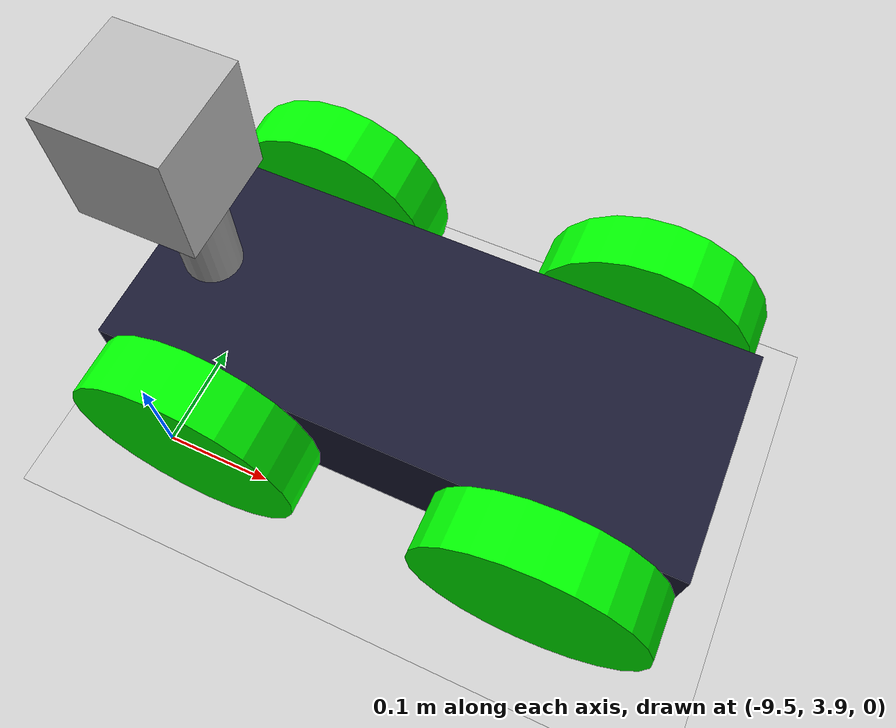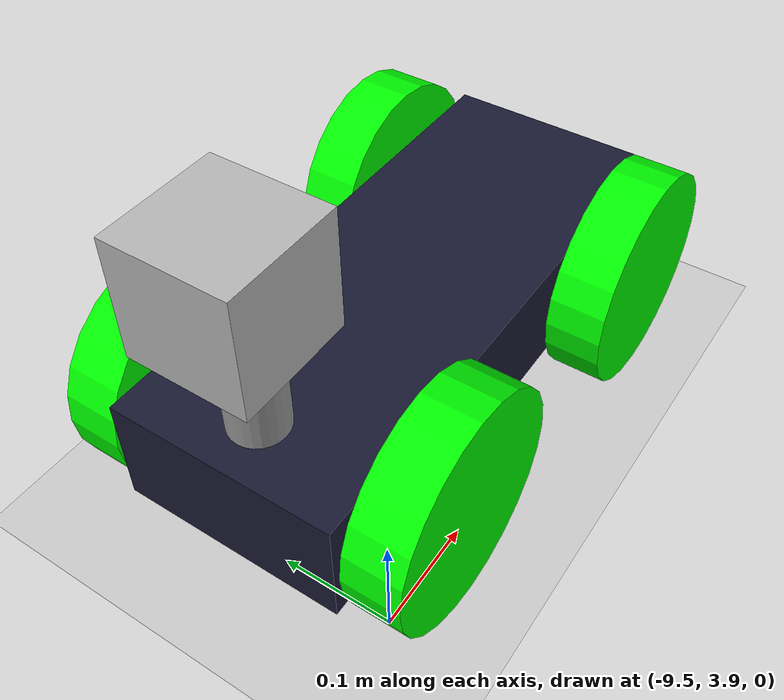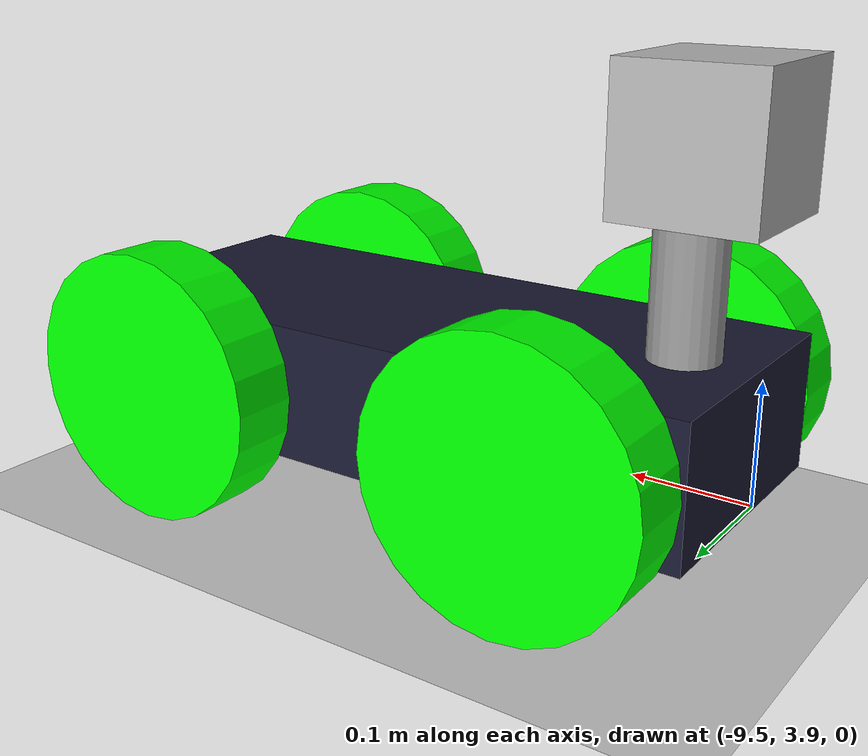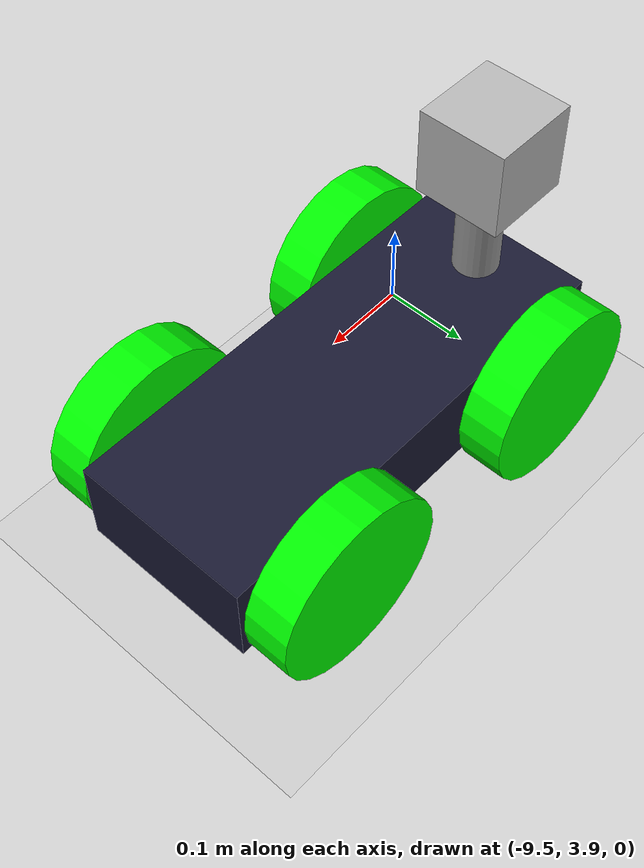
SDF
<sdf version="1.7">
 <world name="default">
  <model name="ground_plane">
   <static>1</static>
   <link name="link">
    <collision name="collision">
     <geometry><plane><normal>0 0 1</normal><size>100 100</size></plane></geometry>
     <surface>
      <contact><collide_bitmask>65535</collide_bitmask></contact>
      <friction><ode><mu>100</mu><mu2>50</mu2></ode></friction>
     </surface>
    </collision>
    <visual name="visual">
     <cast_shadows>0</cast_shadows>
     <geometry><plane><normal>0 0 1</normal><size>100 100</size></plane></geometry>
     <material>
      <script><uri>file://media/materials/scripts/gazebo.material</uri><name>Gazebo/Grey</name></script>
     </material>
    </visual>
   </link>
  </model>
  <model name="robot1">
   <link name="link_0">
    <pose>0.058719 0.000409 -0.03496 0 -0 0</pose>
    <inertial>
     <mass>1</mass>
     <inertia>
      <ixx>0.166667</ixx>
      <ixy>0</ixy>
      <ixz>0</ixz>
      <iyy>0.166667</iyy>
      <iyz>0</iyz>
      <izz>0.166667</izz>
     </inertia>
    </inertial>
    <visual name="visual">
     <geometry><box><size>0.5 0.2 0.1</size></box></geometry>
     <material>
      <lighting>1</lighting>
      <script><uri>file://media/materials/scripts/gazebo.material</uri><name>Gazebo/Grey</name></script>
      <shader type="pixel"><normal_map>__default__</normal_map></shader>
      <ambient>0.1 0.1 0.1 1</ambient>
      <diffuse>0.1 0.1 0.2 1</diffuse>
      <specular>0 0 0 0</specular>
      <emissive>0 0 0 1</emissive>
     </material>
    </visual>
    <collision name="collision">
     <geometry><box><size>0.5 0.2 0.1</size></box></geometry>
     <surface>
      <friction>
       <ode><mu>1</mu><mu2>1</mu2><fdir1>0 0 0</fdir1><slip1>0</slip1><slip2>0</slip2></ode>
       <torsional>
        <coefficient>1</coefficient>
        <patch_radius>0</patch_radius>
        <surface_radius>0</surface_radius>
        <use_patch_radius>1</use_patch_radius>
        <ode><slip>0</slip></ode>
       </torsional>
      </friction>
      <bounce><restitution_coefficient>0</restitution_coefficient><threshold>1e+06</threshold></bounce>
      <contact>
       <collide_without_contact>0</collide_without_contact>
       <collide_without_contact_bitmask>1</collide_without_contact_bitmask>
       <collide_bitmask>1</collide_bitmask>
       <ode>
        <soft_cfm>0</soft_cfm>
        <soft_erp>0.2</soft_erp>
        <kp>1e+13</kp>
        <kd>1</kd>
        <max_vel>0.01</max_vel>
        <min_depth>0</min_depth>
       </ode>
       <bullet>
        <split_impulse>1</split_impulse>
        <split_impulse_penetration_threshold>-0.01</split_impulse_penetration_threshold>
        <soft_cfm>0</soft_cfm>
        <soft_erp>0.2</soft_erp>
        <kp>1e+13</kp>
        <kd>1</kd>
       </bullet>
      </contact>
     </surface>
    </collision>
   </link>
   <link name="link_1">
    <pose>0.208719 0.130409 -0.03496 4.8e-05 1.5707 1.57075</pose>
    <inertial>
     <mass>1</mass>
     <inertia><ixx>0.145833</ixx><ixy>0</ixy><ixz>0</ixz><iyy>0.145833</iyy><iyz>0</iyz><izz>0.125</izz></inertia>
    </inertial>
    <visual name="visual">
     <geometry><cylinder><radius>0.1</radius><length>0.05</length></cylinder></geometry>
     <material>
      <lighting>1</lighting>
      <script><uri>file://media/materials/scripts/gazebo.material</uri><name>Gazebo/Grey</name></script>
      <shader type="pixel"><normal_map>__default__</normal_map></shader>
      <ambient>0 1 0 1</ambient>
      <diffuse>0 1 0 1</diffuse>
      <specular>0 0 0 0</specular>
      <emissive>0 0 0 1</emissive>
     </material>
    </visual>
    <collision name="collision">
     <geometry><cylinder><radius>0.1</radius><length>0.05</length></cylinder></geometry>
     <surface>
      <friction>
       <ode><mu>1</mu><mu2>1</mu2><fdir1>0 0 0</fdir1><slip1>0</slip1><slip2>0</slip2></ode>
       <torsional>
        <coefficient>1</coefficient>
        <patch_radius>0</patch_radius>
        <surface_radius>0</surface_radius>
        <use_patch_radius>1</use_patch_radius>
        <ode><slip>0</slip></ode>
       </torsional>
      </friction>
      <bounce><restitution_coefficient>0</restitution_coefficient><threshold>1e+06</threshold></bounce>
      <contact>
       <collide_without_contact>0</collide_without_contact>
       <collide_without_contact_bitmask>1</collide_without_contact_bitmask>
       <collide_bitmask>1</collide_bitmask>
       <ode>
        <soft_cfm>0</soft_cfm>
        <soft_erp>0.2</soft_erp>
        <kp>1e+13</kp>
        <kd>1</kd>
        <max_vel>0.01</max_vel>
        <min_depth>0</min_depth>
       </ode>
       <bullet>
        <split_impulse>1</split_impulse>
        <split_impulse_penetration_threshold>-0.01</split_impulse_penetration_threshold>
        <soft_cfm>0</soft_cfm>
        <soft_erp>0.2</soft_erp>
        <kp>1e+13</kp>
        <kd>1</kd>
       </bullet>
      </contact>
     </surface>
    </collision>
   </link>
   <link name="link_1_clone">
    <pose>0.208719 -0.129591 -0.03496 4.8e-05 1.5707 1.57075</pose>
    <inertial>
     <mass>1</mass>
     <inertia><ixx>0.145833</ixx><ixy>0</ixy><ixz>0</ixz><iyy>0.145833</iyy><iyz>0</iyz><izz>0.125</izz></inertia>
    </inertial>
    <visual name="visual">
     <geometry><cylinder><radius>0.1</radius><length>0.05</length></cylinder></geometry>
     <material>
      <lighting>1</lighting>
      <script><uri>file://media/materials/scripts/gazebo.material</uri><name>Gazebo/Grey</name></script>
      <shader type="pixel"><normal_map>__default__</normal_map></shader>
      <ambient>0 1 0 1</ambient>
      <diffuse>0 1 0 1</diffuse>
      <specular>0 0 0 0</specular>
      <emissive>0 0 0 1</emissive>
     </material>
    </visual>
    <collision name="collision">
     <geometry><cylinder><radius>0.1</radius><length>0.05</length></cylinder></geometry>
     <surface>
      <friction>
       <ode><mu>1</mu><mu2>1</mu2><fdir1>0 0 0</fdir1><slip1>0</slip1><slip2>0</slip2></ode>
       <torsional>
        <coefficient>1</coefficient>
        <patch_radius>0</patch_radius>
        <surface_radius>0</surface_radius>
        <use_patch_radius>1</use_patch_radius>
        <ode><slip>0</slip></ode>
       </torsional>
      </friction>
      <bounce><restitution_coefficient>0</restitution_coefficient><threshold>1e+06</threshold></bounce>
      <contact>
       <collide_without_contact>0</collide_without_contact>
       <collide_without_contact_bitmask>1</collide_without_contact_bitmask>
       <collide_bitmask>1</collide_bitmask>
       <ode>
        <soft_cfm>0</soft_cfm>
        <soft_erp>0.2</soft_erp>
        <kp>1e+13</kp>
        <kd>1</kd>
        <max_vel>0.01</max_vel>
        <min_depth>0</min_depth>
       </ode>
       <bullet>
        <split_impulse>1</split_impulse>
        <split_impulse_penetration_threshold>-0.01</split_impulse_penetration_threshold>
        <soft_cfm>0</soft_cfm>
        <soft_erp>0.2</soft_erp>
        <kp>1e+13</kp>
        <kd>1</kd>
       </bullet>
      </contact>
     </surface>
    </collision>
   </link>
   <link name="link_1_clone_0">
    <pose>-0.091281 0.130409 -0.03496 4.8e-05 1.5707 1.57075</pose>
    <inertial>
     <mass>1</mass>
     <inertia><ixx>0.145833</ixx><ixy>0</ixy><ixz>0</ixz><iyy>0.145833</iyy><iyz>0</iyz><izz>0.125</izz></inertia>
    </inertial>
    <visual name="visual">
     <geometry><cylinder><radius>0.1</radius><length>0.05</length></cylinder></geometry>
     <material>
      <lighting>1</lighting>
      <script><uri>file://media/materials/scripts/gazebo.material</uri><name>Gazebo/Grey</name></script>
      <shader type="pixel"><normal_map>__default__</normal_map></shader>
      <ambient>0 1 0 1</ambient>
      <diffuse>0 1 0 1</diffuse>
      <specular>0 0 0 0</specular>
      <emissive>0 0 0 1</emissive>
     </material>
    </visual>
    <collision name="collision">
     <geometry><cylinder><radius>0.1</radius><length>0.05</length></cylinder></geometry>
     <surface>
      <friction>
       <ode><mu>1</mu><mu2>1</mu2><fdir1>0 0 0</fdir1><slip1>0</slip1><slip2>0</slip2></ode>
       <torsional>
        <coefficient>1</coefficient>
        <patch_radius>0</patch_radius>
        <surface_radius>0</surface_radius>
        <use_patch_radius>1</use_patch_radius>
        <ode><slip>0</slip></ode>
       </torsional>
      </friction>
      <bounce><restitution_coefficient>0</restitution_coefficient><threshold>1e+06</threshold></bounce>
      <contact>
       <collide_without_contact>0</collide_without_contact>
       <collide_without_contact_bitmask>1</collide_without_contact_bitmask>
       <collide_bitmask>1</collide_bitmask>
       <ode>
        <soft_cfm>0</soft_cfm>
        <soft_erp>0.2</soft_erp>
        <kp>1e+13</kp>
        <kd>1</kd>
        <max_vel>0.01</max_vel>
        <min_depth>0</min_depth>
       </ode>
       <bullet>
        <split_impulse>1</split_impulse>
        <split_impulse_penetration_threshold>-0.01</split_impulse_penetration_threshold>
        <soft_cfm>0</soft_cfm>
        <soft_erp>0.2</soft_erp>
        <kp>1e+13</kp>
        <kd>1</kd>
       </bullet>
      </contact>
     </surface>
    </collision>
   </link>
   <link name="link_1_clone_1">
    <pose>-0.091281 -0.129591 -0.03496 4.8e-05 1.5707 1.57075</pose>
    <inertial>
     <mass>1</mass>
     <inertia><ixx>0.145833</ixx><ixy>0</ixy><ixz>0</ixz><iyy>0.145833</iyy><iyz>0</iyz><izz>0.125</izz></inertia>
    </inertial>
    <visual name="visual">
     <geometry><cylinder><radius>0.1</radius><length>0.05</length></cylinder></geometry>
     <material>
      <lighting>1</lighting>
      <script><uri>file://media/materials/scripts/gazebo.material</uri><name>Gazebo/Grey</name></script>
      <shader type="pixel"><normal_map>__default__</normal_map></shader>
      <ambient>0 1 0 1</ambient>
      <diffuse>0 1 0 1</diffuse>
      <specular>0 0 0 0</specular>
      <emissive>0 0 0 1</emissive>
     </material>
    </visual>
    <collision name="collision">
     <geometry><cylinder><radius>0.1</radius><length>0.05</length></cylinder></geometry>
     <surface>
      <friction>
       <ode><mu>1</mu><mu2>1</mu2><fdir1>0 0 0</fdir1><slip1>0</slip1><slip2>0</slip2></ode>
       <torsional>
        <coefficient>1</coefficient>
        <patch_radius>0</patch_radius>
        <surface_radius>0</surface_radius>
        <use_patch_radius>1</use_patch_radius>
        <ode><slip>0</slip></ode>
       </torsional>
      </friction>
      <bounce><restitution_coefficient>0</restitution_coefficient><threshold>1e+06</threshold></bounce>
      <contact>
       <collide_without_contact>0</collide_without_contact>
       <collide_without_contact_bitmask>1</collide_without_contact_bitmask>
       <collide_bitmask>1</collide_bitmask>
       <ode>
        <soft_cfm>0</soft_cfm>
        <soft_erp>0.2</soft_erp>
        <kp>1e+13</kp>
        <kd>1</kd>
        <max_vel>0.01</max_vel>
        <min_depth>0</min_depth>
       </ode>
       <bullet>
        <split_impulse>1</split_impulse>
        <split_impulse_penetration_threshold>-0.01</split_impulse_penetration_threshold>
        <soft_cfm>0</soft_cfm>
        <soft_erp>0.2</soft_erp>
        <kp>1e+13</kp>
        <kd>1</kd>
       </bullet>
      </contact>
     </surface>
    </collision>
   </link>
   <link name="link_2">
    <pose>-0.141281 0.000409 0.06504 0 -0 0</pose>
    <inertial>
     <mass>1</mass>
     <inertia><ixx>0.145833</ixx><ixy>0</ixy><ixz>0</ixz><iyy>0.145833</iyy><iyz>0</iyz><izz>0.125</izz></inertia>
    </inertial>
    <visual name="visual">
     <geometry><cylinder><radius>0.025</radius><length>0.1</length></cylinder></geometry>
     <material>
      <lighting>1</lighting>
      <script><uri>file://media/materials/scripts/gazebo.material</uri><name>Gazebo/Grey</name></script>
      <shader type="pixel"><normal_map>__default__</normal_map></shader>
      <ambient>0.3 0.3 0.3 1</ambient>
      <diffuse>0.7 0.7 0.7 1</diffuse>
      <specular>0.01 0.01 0.01 1</specular>
      <emissive>0 0 0 1</emissive>
     </material>
    </visual>
    <collision name="collision">
     <geometry><cylinder><radius>0.025</radius><length>0.1</length></cylinder></geometry>
     <surface>
      <friction>
       <ode><mu>1</mu><mu2>1</mu2><fdir1>0 0 0</fdir1><slip1>0</slip1><slip2>0</slip2></ode>
       <torsional>
        <coefficient>1</coefficient>
        <patch_radius>0</patch_radius>
        <surface_radius>0</surface_radius>
        <use_patch_radius>1</use_patch_radius>
        <ode><slip>0</slip></ode>
       </torsional>
      </friction>
      <bounce><restitution_coefficient>0</restitution_coefficient><threshold>1e+06</threshold></bounce>
      <contact>
       <collide_without_contact>0</collide_without_contact>
       <collide_without_contact_bitmask>1</collide_without_contact_bitmask>
       <collide_bitmask>1</collide_bitmask>
       <ode>
        <soft_cfm>0</soft_cfm>
        <soft_erp>0.2</soft_erp>
        <kp>1e+13</kp>
        <kd>1</kd>
        <max_vel>0.01</max_vel>
        <min_depth>0</min_depth>
       </ode>
       <bullet>
        <split_impulse>1</split_impulse>
        <split_impulse_penetration_threshold>-0.01</split_impulse_penetration_threshold>
        <soft_cfm>0</soft_cfm>
        <soft_erp>0.2</soft_erp>
        <kp>1e+13</kp>
        <kd>1</kd>
       </bullet>
      </contact>
     </surface>
    </collision>
   </link>
   <model name="depth_camera">
    <link name="link">
     <pose>0 0 0.05 0 -0 0</pose>
     <inertial>
      <mass>0.1</mass>
      <inertia>
       <ixx>0.000166667</ixx>
       <iyy>0.000166667</iyy>
       <izz>0.000166667</izz>
       <ixy>0</ixy>
       <ixz>0</ixz>
       <iyz>0</iyz>
      </inertia>
     </inertial>
     <collision name="collision"><geometry><box><size>0.1 0.1 0.1</size></box></geometry></collision>
     <visual name="visual"><geometry><box><size>0.1 0.1 0.1</size></box></geometry></visual>
     <sensor name="camera" type="depth">
      <camera name="__default__">
       <horizontal_fov>1.047</horizontal_fov>
       <image><width>320</width><height>240</height></image>
       <clip><near>0.1</near><far>100</far></clip>
      </camera>
      <always_on>1</always_on>
      <update_rate>30</update_rate>
      <visualize>1</visualize>
     </sensor>
    </link>
    <pose>-0.152312 -0.002454 0.109757 0 -0 0</pose>
   </model>
   <joint name="link_0_JOINT_0" type="revolute">
    <parent>link_0</parent>
    <child>link_1</child>
    <axis>
     <xyz>0 0 1</xyz>
     <limit>
      <lower>-1.79769e+308</lower>
      <upper>1.79769e+308</upper>
      <effort>-1</effort>
      <velocity>-1</velocity>
     </limit>
     <dynamics>
      <spring_reference>0</spring_reference>
      <spring_stiffness>0</spring_stiffness>
      <damping>0</damping>
     </dynamics>
    </axis>
    <physics>
     <ode><limit><cfm>0</cfm><erp>0.2</erp></limit><suspension><cfm>0</cfm><erp>0.2</erp></suspension></ode>
    </physics>
   </joint>
   <joint name="link_0_JOINT_1" type="revolute">
    <parent>link_0</parent>
    <child>link_1_clone_0</child>
    <axis>
     <xyz>0 0 1</xyz>
     <limit>
      <lower>-1.79769e+308</lower>
      <upper>1.79769e+308</upper>
      <effort>-1</effort>
      <velocity>-1</velocity>
     </limit>
     <dynamics>
      <spring_reference>0</spring_reference>
      <spring_stiffness>0</spring_stiffness>
      <damping>0</damping>
     </dynamics>
    </axis>
    <physics>
     <ode><limit><cfm>0</cfm><erp>0.2</erp></limit><suspension><cfm>0</cfm><erp>0.2</erp></suspension></ode>
    </physics>
   </joint>
   <joint name="link_0_JOINT_2" type="revolute">
    <parent>link_0</parent>
    <child>link_1_clone</child>
    <axis>
     <xyz>0 0 1</xyz>
     <limit>
      <lower>-1.79769e+308</lower>
      <upper>1.79769e+308</upper>
      <effort>-1</effort>
      <velocity>-1</velocity>
     </limit>
     <dynamics>
      <spring_reference>0</spring_reference>
      <spring_stiffness>0</spring_stiffness>
      <damping>0</damping>
     </dynamics>
    </axis>
    <physics>
     <ode><limit><cfm>0</cfm><erp>0.2</erp></limit><suspension><cfm>0</cfm><erp>0.2</erp></suspension></ode>
    </physics>
   </joint>
   <joint name="link_0_JOINT_3" type="revolute">
    <parent>link_0</parent>
    <child>link_1_clone_1</child>
    <axis>
     <xyz>0 0 1</xyz>
     <limit>
      <lower>-1.79769e+308</lower>
      <upper>1.79769e+308</upper>
      <effort>-1</effort>
      <velocity>-1</velocity>
     </limit>
     <dynamics>
      <spring_reference>0</spring_reference>
      <spring_stiffness>0</spring_stiffness>
      <damping>0</damping>
     </dynamics>
    </axis>
    <physics>
     <ode><limit><cfm>0</cfm><erp>0.2</erp></limit><suspension><cfm>0</cfm><erp>0.2</erp></suspension></ode>
    </physics>
   </joint>
   <joint name="link_0_JOINT_4" type="revolute">
    <parent>link_0</parent>
    <child>link_2</child>
    <axis>
     <xyz>0 0 1</xyz>
     <limit>
      <lower>-1.79769e+308</lower>
      <upper>1.79769e+308</upper>
      <effort>-1</effort>
      <velocity>-1</velocity>
     </limit>
     <dynamics>
      <spring_reference>0</spring_reference>
      <spring_stiffness>0</spring_stiffness>
      <damping>0</damping>
     </dynamics>
    </axis>
    <physics>
     <ode><limit><cfm>0</cfm><erp>0.2</erp></limit><suspension><cfm>0</cfm><erp>0.2</erp></suspension></ode>
    </physics>
   </joint>
   <joint name="link_2_JOINT_5" type="fixed">
    <parent>link_2</parent>
    <child>depth_camera::link</child>
    <physics>
     <ode><limit><cfm>0</cfm><erp>0.2</erp></limit><suspension><cfm>0</cfm><erp>0.2</erp></suspension></ode>
    </physics>
   </joint>
   <static>0</static>
   <pose>-9.34695 4.01854 0.134961 -2e-06 1.5e-05 0.000393</pose>
  </model>
 </world>
</sdf>
